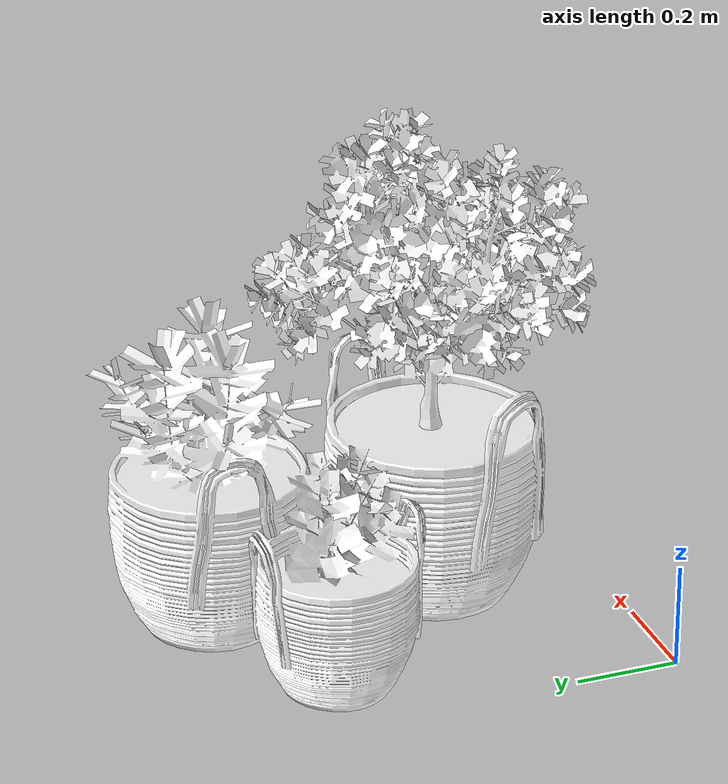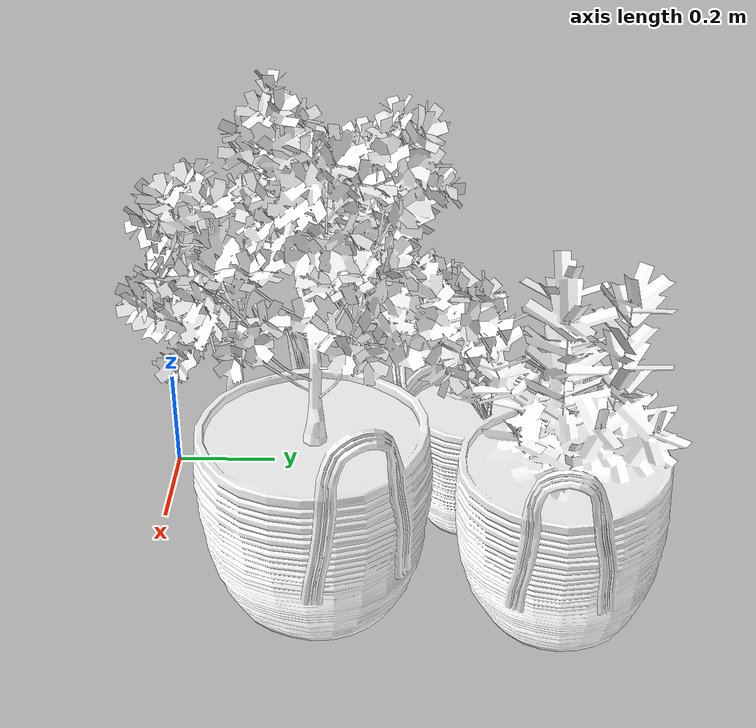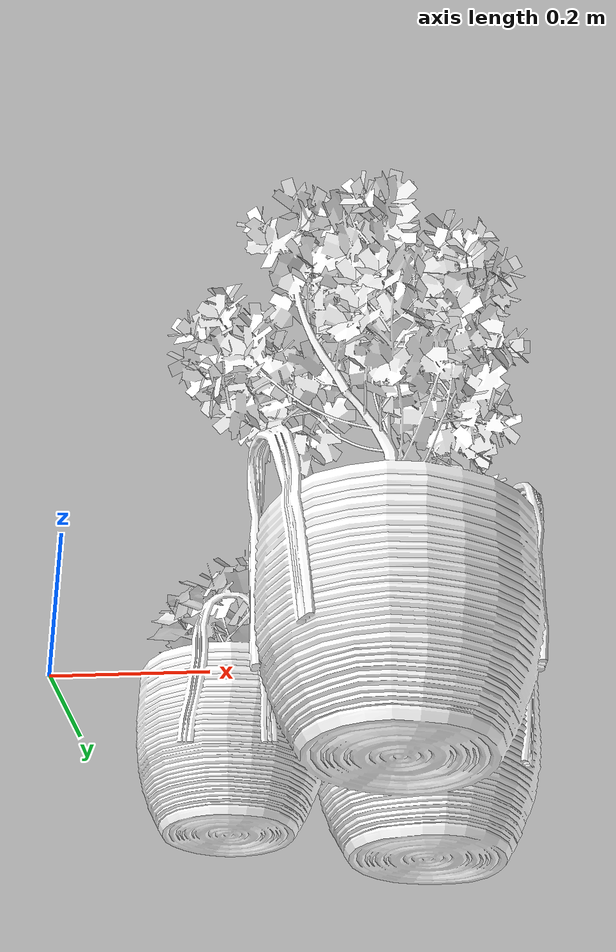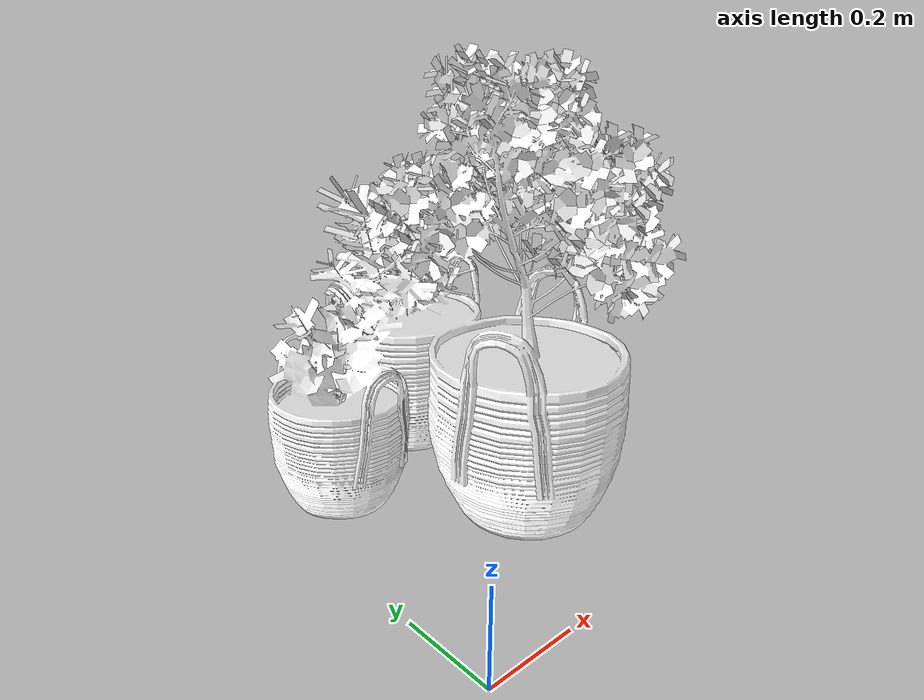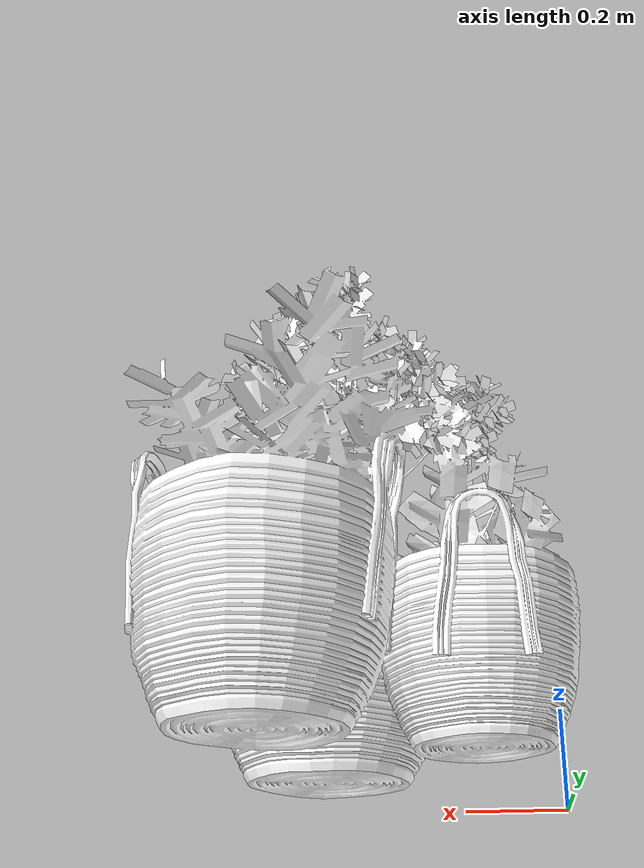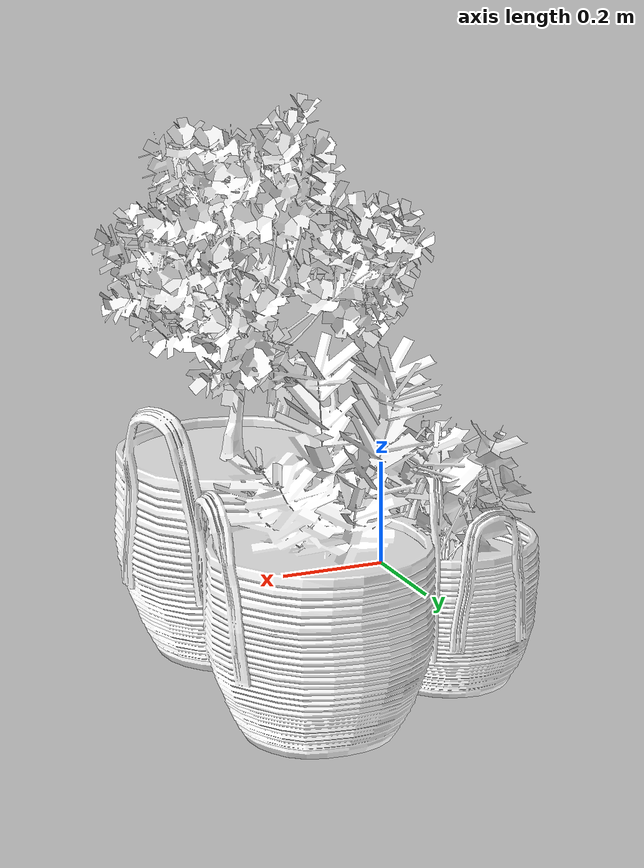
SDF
<?xml version='1.0'?>
<sdf version='1.7'>
  <model name='plant'>
    <link name='link'>
      <pose>0 0 0 0 0 0</pose>
      <visual name='visual'>
        <geometry>
          <mesh>
            <uri>/root/workspace/self_gazebo_models/plant/meshes/model.dae</uri>
          </mesh>
        </geometry>
        <material>
          <script>
	          <uri>/root/workspace/self_gazebo_models/plant/materials/scripts</uri>
            <uri>/root/workspace/self_gazebo_models/plant/materials/textures</uri>
            <name>Balcony/plant</name>
          </script>
          <ambient>1 1 1 1</ambient>
        </material>
      </visual>
      <collision name='collision'>
        <geometry>
          <mesh>
            <uri>/root/workspace/self_gazebo_models/plant/meshes/model.dae</uri>
            <scale>1 1 1</scale>
          </mesh>
        </geometry>
      </collision>
    </link>
    <static>1</static>
    <allow_auto_disable>1</allow_auto_disable>
  </model>
</sdf>
